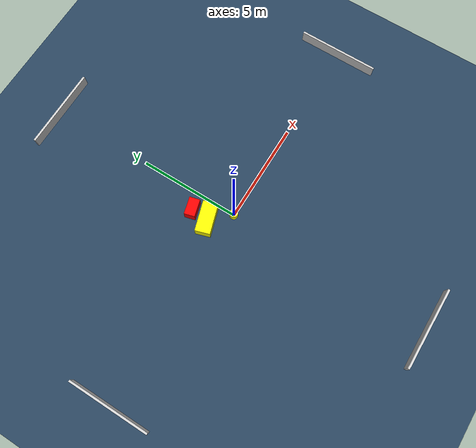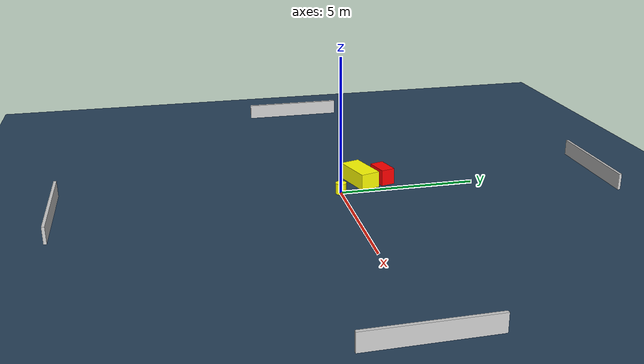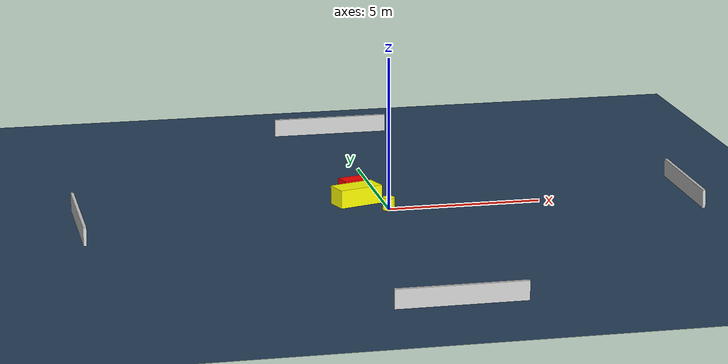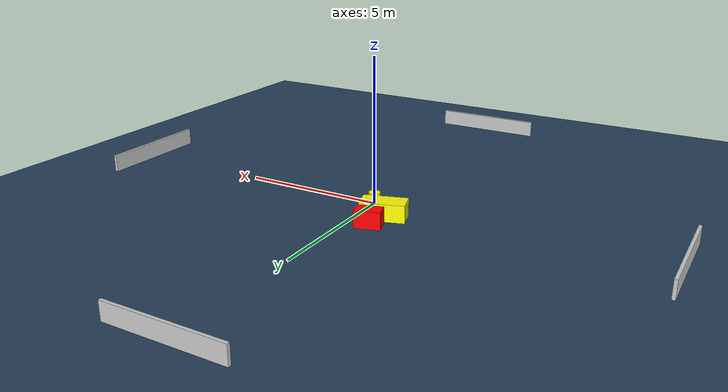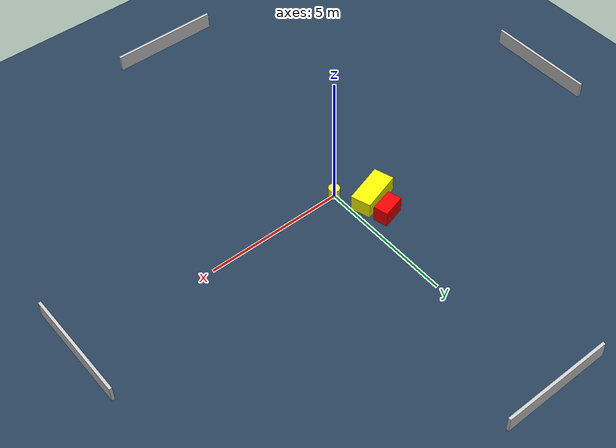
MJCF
<?xml version="1.0" ?>
<mujoco model="generated_environment">
  <option timestep="0.01" integrator="RK4" cone="elliptic"/>
  <default>
    <geom density="1"/>
  </default>
  <asset>
    <texture builtin="gradient" height="3072" name="skybox" rgb1="0.3 0.5 0.7" rgb2="0 0 0" type="skybox" width="512"/>
    <texture builtin="checker" height="300" name="groundplane" rgb1="0.2 0.3 0.4" rgb2="0.1 0.2 0.3" type="2d" width="300"/>
    <material name="groundplane" reflectance="0.2" texrepeat="5 5" texture="groundplane"/>
  </asset>
  <worldbody>
    <light dir="0 0 -1" directional="true" pos="0 0 1.5"/>
    <geom condim="3" friction="0.5 0.005 0.001" material="groundplane" name="floor" pos="0 0 0" size="0 0 0.05" type="plane"/>
    <body name="walls">
      <geom name="wall_1" condim="4" pos="-10.0 0.0 0.3" rgba="0.800000011920929 0.800000011920929 0.800000011920929 1.0" size="0.05 2.0 0.3" type="box"/>
      <geom name="wall_2" condim="4" pos="10.0 0.0 0.3" rgba="0.800000011920929 0.800000011920929 0.800000011920929 1.0" size="0.05 2.0 0.3" type="box"/>
      <geom name="wall_3" condim="4" pos="0.0 -10.0 0.3" rgba="0.800000011920929 0.800000011920929 0.800000011920929 1.0" size="2.0 0.05 0.3" type="box"/>
      <geom name="wall_4" condim="4" pos="0.0 10.0 0.3" rgba="0.800000011920929 0.800000011920929 0.800000011920929 1.0" size="2.0 0.05 0.3" type="box"/>
    </body>
    <body name="robot">
      <joint name="joint_x" type="slide" pos="0 0 0" axis="1 0 0"/>
      <joint name="joint_y" type="slide" pos="0 0 0" axis="0 1 0"/>
      <geom name="robot" type="cylinder" pos="0.0 0.0 0.2" size="0.2 0.2 0.0" mass="5.0" friction="1.0 0.005 0.0001" condim="4" rgba="1.0 1.0 0.0 1.0"/>
    </body>
    <body name="obstacle_1_movable">
      <geom name="obstacle_1_movable" condim="4" pos="-0.8742116166724739 0.9323320143292568 0.3" euler="0 0 197.1340795497541" friction="0.0 0.005 0.001" rgba="1.0 1.0 0.0 1.0" size="0.7479991709717622 0.3666492392561771 0.3" type="box" mass="0.1"/>
      <joint type="free"/>
    </body>
    <body name="obstacle_2_static">
      <geom name="obstacle_2_static" condim="4" pos="-0.7999289182656778 1.7750084389700493 0.3" euler="0 0 105.18165490474725" friction="0.0 0.005 0.001" rgba="1.0 0.0 0.0 1.0" size="0.2605033204582399 0.42847173915830317 0.3" type="box"/>
    </body>
  </worldbody>
  <actuator>
    <motor name="actuator_x" joint="joint_x" gear="1" ctrlrange="-1 1"/>
    <motor name="actuator_y" joint="joint_y" gear="1" ctrlrange="-1 1"/>
  </actuator>
</mujoco>
